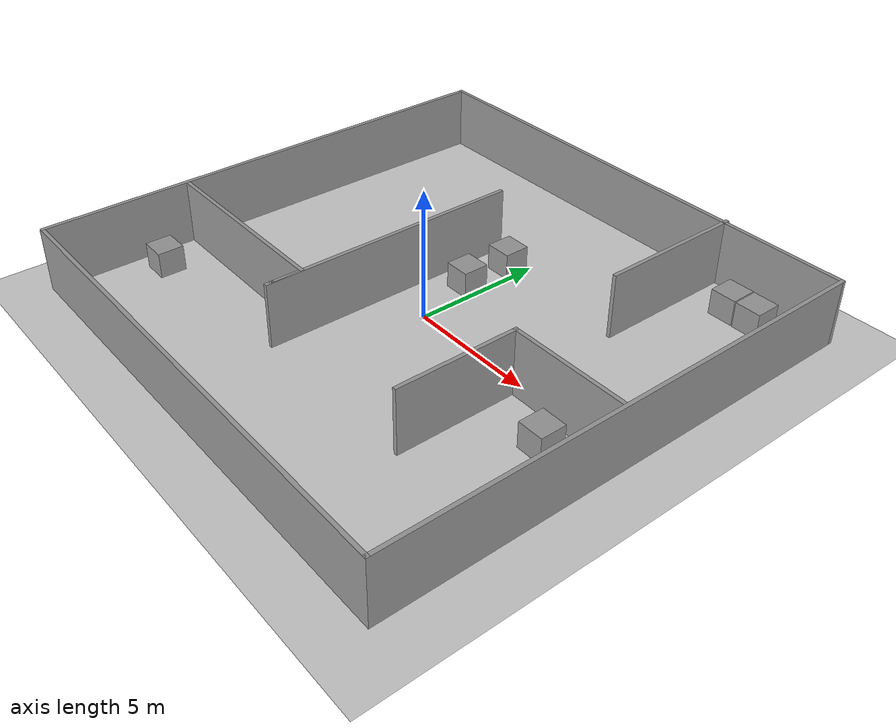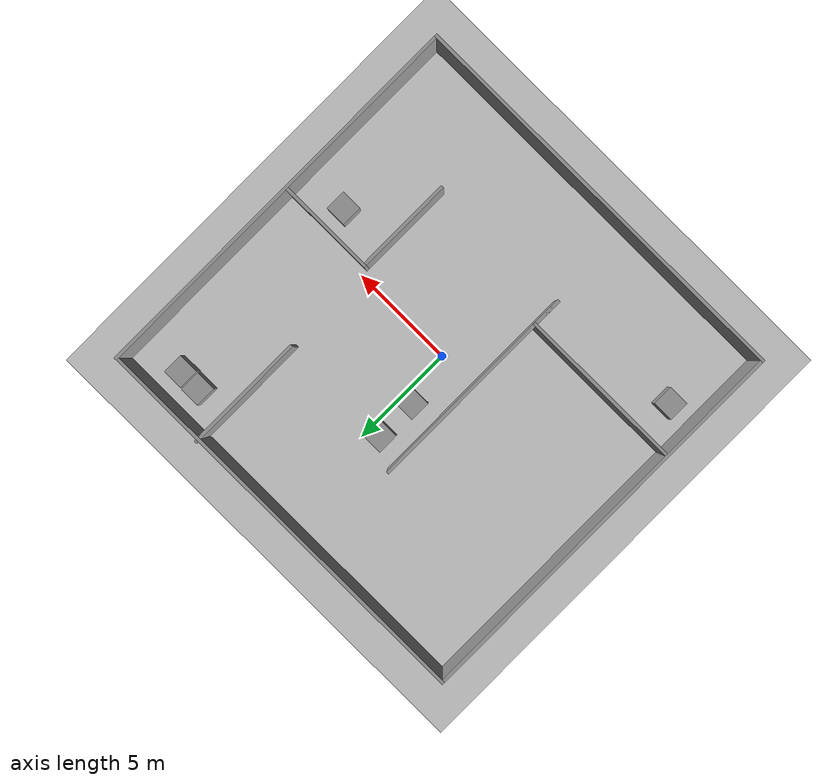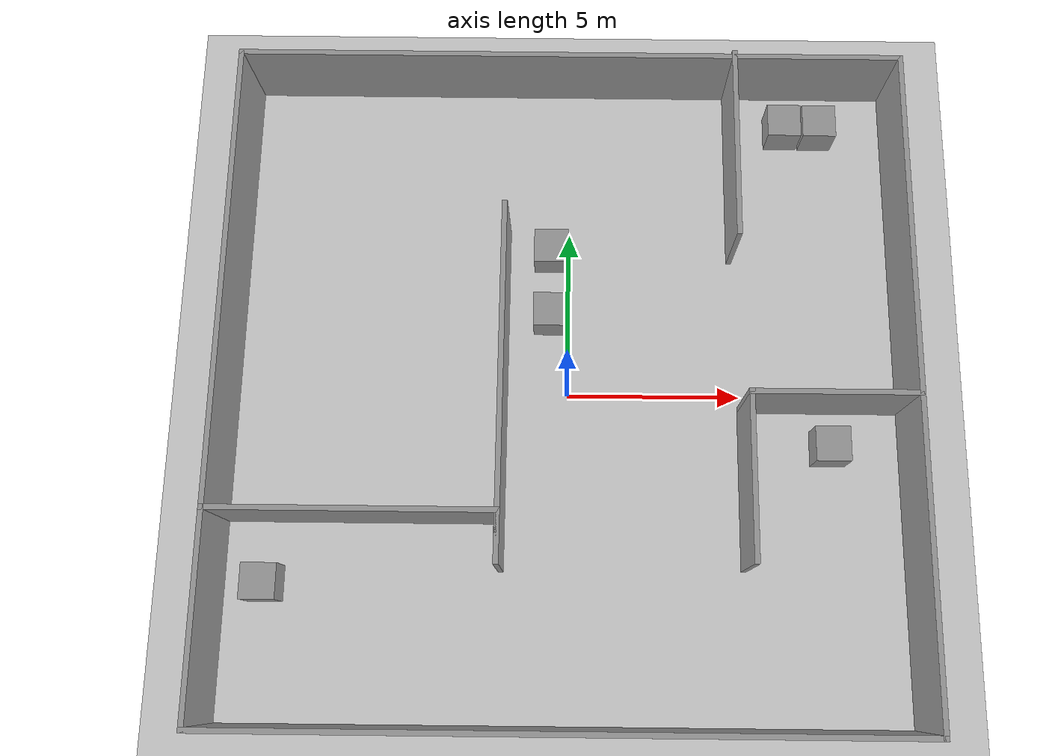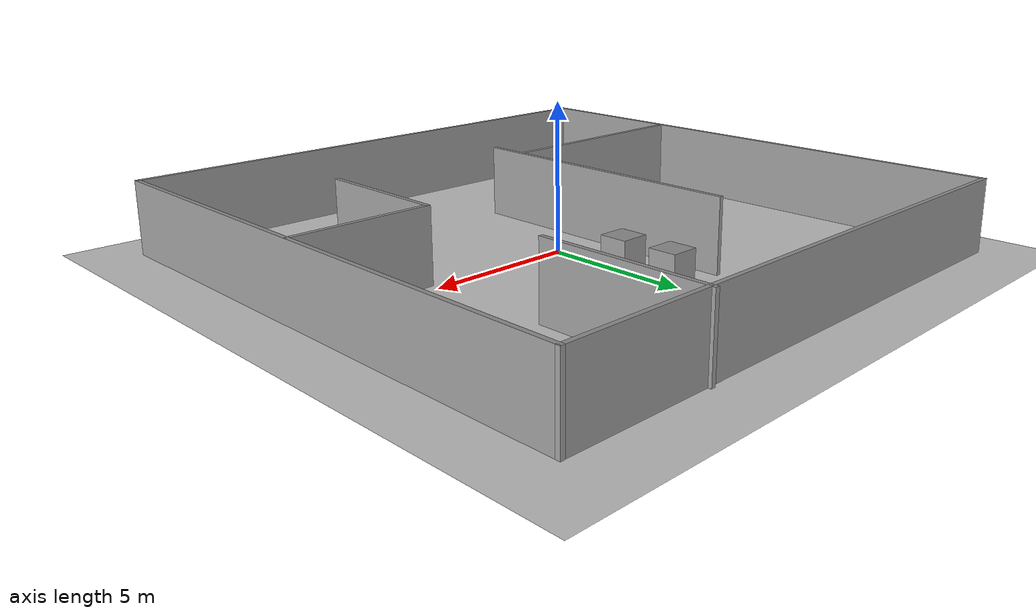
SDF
<sdf version="1.7">
 <world name="default">
  <light name="sun" type="directional">
   <pose>0 0 10 0 -0 0</pose>
   <diffuse>0.8 0.8 0.8 1</diffuse>
   <specular>0.2 0.2 0.2 1</specular>
   <attenuation>
    <range>1000</range>
    <constant>0.9</constant>
    <linear>0.01</linear>
    <quadratic>0.001</quadratic>
   </attenuation>
   <direction>-0.5 0.1 -0.9</direction>
   <spot><inner_angle>0</inner_angle><outer_angle>0</outer_angle><falloff>0</falloff></spot>
  </light>
  <model name="ground_plane">
   <static>1</static>
   <link name="link">
    <collision name="collision">
     <geometry><plane><normal>0 0 1</normal><size>100 100</size></plane></geometry>
     <surface>
      <contact><collide_bitmask>65535</collide_bitmask></contact>
      <friction><ode><mu>100</mu><mu2>50</mu2></ode></friction>
     </surface>
    </collision>
    <visual name="visual">
     <cast_shadows>0</cast_shadows>
     <geometry><plane><normal>0 0 1</normal><size>100 100</size></plane></geometry>
     <material>
      <script><uri>file://media/materials/scripts/gazebo.material</uri><name>Gazebo/Grey</name></script>
     </material>
    </visual>
   </link>
  </model>
  <gravity>0 0 -9.8</gravity>
  <magnetic_field>6e-06 2.3e-05 -4.2e-05</magnetic_field>
  <atmosphere type="adiabatic"/>
  <physics type="ode">
   <max_step_size>0.001</max_step_size>
   <real_time_factor>1</real_time_factor>
   <real_time_update_rate>1000</real_time_update_rate>
  </physics>
  <scene><ambient>0.4 0.4 0.4 1</ambient><background>0.7 0.7 0.7 1</background><shadows>1</shadows></scene>
  <audio><device>default</device></audio>
  <spherical_coordinates>
   <surface_model>EARTH_WGS84</surface_model>
   <latitude_deg>0</latitude_deg>
   <longitude_deg>0</longitude_deg>
   <elevation>0</elevation>
   <heading_deg>0</heading_deg>
  </spherical_coordinates>
  <model name="new_big_room">
   <pose>-0.01151 0.23336 0 0 -0 0</pose>
   <link name="Wall_25">
    <collision name="Wall_25_Collision">
     <geometry><box><size>19.5 0.15 2.5</size></box></geometry>
     <pose>0 0 1.25 0 -0 0</pose>
    </collision>
    <visual name="Wall_25_Visual">
     <pose>0 0 1.25 0 -0 0</pose>
     <geometry><box><size>19.5 0.15 2.5</size></box></geometry>
     <material>
      <script><uri>file://media/materials/scripts/gazebo.material</uri><name>Gazebo/Grey</name></script>
      <ambient>1 1 1 1</ambient>
     </material>
     <meta><layer>0</layer></meta>
    </visual>
    <pose>0 -9.6037 0 0 -0 0</pose>
   </link>
   <link name="Wall_29">
    <collision name="Wall_29_Collision">
     <geometry><box><size>19.25 0.15 2.5</size></box></geometry>
     <pose>0 0 1.25 0 -0 0</pose>
    </collision>
    <visual name="Wall_29_Visual">
     <pose>0 0 1.25 0 -0 0</pose>
     <geometry><box><size>19.25 0.15 2.5</size></box></geometry>
     <material>
      <script><uri>file://media/materials/scripts/gazebo.material</uri><name>Gazebo/Grey</name></script>
      <ambient>1 1 1 1</ambient>
     </material>
     <meta><layer>0</layer></meta>
    </visual>
    <pose>9.675 -0.053699 0 0 -0 1.5708</pose>
   </link>
   <link name="Wall_30">
    <collision name="Wall_30_Collision">
     <geometry><box><size>19.5 0.15 2.5</size></box></geometry>
     <pose>0 0 1.25 0 -0 0</pose>
    </collision>
    <visual name="Wall_30_Visual">
     <pose>0 0 1.25 0 -0 0</pose>
     <geometry><box><size>19.5 0.15 2.5</size></box></geometry>
     <material>
      <script><uri>file://media/materials/scripts/gazebo.material</uri><name>Gazebo/Grey</name></script>
      <ambient>1 1 1 1</ambient>
     </material>
     <meta><layer>0</layer></meta>
    </visual>
    <pose>0 9.4963 0 0 -0 3.14159</pose>
   </link>
   <link name="Wall_32">
    <collision name="Wall_32_Collision">
     <geometry><box><size>19.25 0.15 2.5</size></box></geometry>
     <pose>0 0 1.25 0 -0 0</pose>
    </collision>
    <visual name="Wall_32_Visual">
     <pose>0 0 1.25 0 -0 0</pose>
     <geometry><box><size>19.25 0.15 2.5</size></box></geometry>
     <material>
      <script><uri>file://media/materials/scripts/gazebo.material</uri><name>Gazebo/Grey</name></script>
      <ambient>1 1 1 1</ambient>
     </material>
     <meta><layer>0</layer></meta>
    </visual>
    <pose>-9.675 -0.053699 0 0 -0 1.5708</pose>
   </link>
   <link name="Wall_34">
    <collision name="Wall_34_Collision">
     <geometry><box><size>8 0.15 2.5</size></box></geometry>
     <pose>0 0 1.25 0 -0 0</pose>
    </collision>
    <visual name="Wall_34_Visual">
     <pose>0 0 1.25 0 -0 0</pose>
     <geometry><box><size>8 0.15 2.5</size></box></geometry>
     <material>
      <script><uri>file://media/materials/scripts/gazebo.material</uri><name>Gazebo/Grey</name></script>
      <ambient>1 1 1 1</ambient>
     </material>
     <meta><layer>0</layer></meta>
    </visual>
    <pose>-5.75 -3.93243 0 0 -0 0</pose>
   </link>
   <link name="Wall_35">
    <collision name="Wall_35_Collision">
     <geometry><box><size>1.5 0.15 2.5</size></box></geometry>
     <pose>0 0 1.25 0 -0 0</pose>
    </collision>
    <visual name="Wall_35_Visual">
     <pose>0 0 1.25 0 -0 0</pose>
     <geometry><box><size>1.5 0.15 2.5</size></box></geometry>
     <material>
      <script><uri>file://media/materials/scripts/gazebo.material</uri><name>Gazebo/Grey</name></script>
      <ambient>1 1 1 1</ambient>
     </material>
     <meta><layer>0</layer></meta>
    </visual>
    <pose>-1.825 -4.60743 0 0 -0 -1.5708</pose>
   </link>
   <link name="Wall_36">
    <collision name="Wall_36_Collision">
     <geometry><box><size>10.25 0.15 2.5</size></box></geometry>
     <pose>0 0 1.25 0 -0 0</pose>
    </collision>
    <visual name="Wall_36_Visual">
     <pose>0 0 1.25 0 -0 0</pose>
     <geometry><box><size>10.25 0.15 2.5</size></box></geometry>
     <material>
      <script><uri>file://media/materials/scripts/gazebo.material</uri><name>Gazebo/Grey</name></script>
      <ambient>1 1 1 1</ambient>
     </material>
     <meta><layer>0</layer></meta>
    </visual>
    <pose>-1.825 -0.232434 0 0 -0 1.5708</pose>
   </link>
   <link name="Wall_38">
    <collision name="Wall_38_Collision">
     <geometry><box><size>5.75 0.15 2.5</size></box></geometry>
     <pose>0 0 1.25 0 -0 0</pose>
    </collision>
    <visual name="Wall_38_Visual">
     <pose>0 0 1.25 0 -0 0</pose>
     <geometry><box><size>5.75 0.15 2.5</size></box></geometry>
     <material>
      <script><uri>file://media/materials/scripts/gazebo.material</uri><name>Gazebo/Grey</name></script>
      <ambient>1 1 1 1</ambient>
     </material>
     <meta><layer>0</layer></meta>
    </visual>
    <pose>4.82418 6.8037 0 0 -0 -1.5708</pose>
   </link>
   <link name="Wall_40">
    <collision name="Wall_40_Collision">
     <geometry><box><size>4.75 0.15 2.5</size></box></geometry>
     <pose>0 0 1.25 0 -0 0</pose>
    </collision>
    <visual name="Wall_40_Visual">
     <pose>0 0 1.25 0 -0 0</pose>
     <geometry><box><size>4.75 0.15 2.5</size></box></geometry>
     <material>
      <script><uri>file://media/materials/scripts/gazebo.material</uri><name>Gazebo/Grey</name></script>
      <ambient>1 1 1 1</ambient>
     </material>
     <meta><layer>0</layer></meta>
    </visual>
    <pose>7.3394 -0.615279 0 0 -0 3.14159</pose>
   </link>
   <link name="Wall_41">
    <collision name="Wall_41_Collision">
     <geometry><box><size>4.75 0.15 2.5</size></box></geometry>
     <pose>0 0 1.25 0 -0 0</pose>
    </collision>
    <visual name="Wall_41_Visual">
     <pose>0 0 1.25 0 -0 0</pose>
     <geometry><box><size>4.75 0.15 2.5</size></box></geometry>
     <material>
      <script><uri>file://media/materials/scripts/gazebo.material</uri><name>Gazebo/Grey</name></script>
      <ambient>1 1 1 1</ambient>
     </material>
     <meta><layer>0</layer></meta>
    </visual>
    <pose>5.0394 -2.91528 0 0 -0 -1.5708</pose>
   </link>
   <static>1</static>
  </model>
  <model name="unit_box">
   <pose>7.53819 8.44674 0.499995 -1e-05 0 0</pose>
   <link name="link">
    <inertial>
     <mass>1</mass>
     <inertia>
      <ixx>0.166667</ixx>
      <ixy>0</ixy>
      <ixz>0</ixz>
      <iyy>0.166667</iyy>
      <iyz>0</iyz>
      <izz>0.166667</izz>
     </inertia>
    </inertial>
    <collision name="collision"><geometry><box><size>1 1 1</size></box></geometry></collision>
    <visual name="visual">
     <geometry><box><size>1 1 1</size></box></geometry>
     <material>
      <script><name>Gazebo/Grey</name><uri>file://media/materials/scripts/gazebo.material</uri></script>
     </material>
    </visual>
   </link>
  </model>
  <model name="unit_box_0">
   <pose>6.48658 8.45762 0.499995 0 1e-05 0</pose>
   <link name="link">
    <inertial>
     <mass>1</mass>
     <inertia>
      <ixx>0.166667</ixx>
      <ixy>0</ixy>
      <ixz>0</ixz>
      <iyy>0.166667</iyy>
      <iyz>0</iyz>
      <izz>0.166667</izz>
     </inertia>
    </inertial>
    <collision name="collision"><geometry><box><size>1 1 1</size></box></geometry></collision>
    <visual name="visual">
     <geometry><box><size>1 1 1</size></box></geometry>
     <material>
      <script><name>Gazebo/Grey</name><uri>file://media/materials/scripts/gazebo.material</uri></script>
     </material>
    </visual>
   </link>
  </model>
  <model name="unit_box_1">
   <pose>7.52566 -1.51398 0.499995 0 1e-05 0</pose>
   <link name="link">
    <inertial>
     <mass>1</mass>
     <inertia>
      <ixx>0.166667</ixx>
      <ixy>0</ixy>
      <ixz>0</ixz>
      <iyy>0.166667</iyy>
      <iyz>0</iyz>
      <izz>0.166667</izz>
     </inertia>
    </inertial>
    <collision name="collision"><geometry><box><size>1 1 1</size></box></geometry></collision>
    <visual name="visual">
     <geometry><box><size>1 1 1</size></box></geometry>
     <material>
      <script><name>Gazebo/Grey</name><uri>file://media/materials/scripts/gazebo.material</uri></script>
     </material>
    </visual>
   </link>
  </model>
  <model name="unit_box_2">
   <pose>-8.44041 -5.51018 0.499995 -1e-05 -0 -0</pose>
   <link name="link">
    <inertial>
     <mass>1</mass>
     <inertia>
      <ixx>0.166667</ixx>
      <ixy>0</ixy>
      <ixz>0</ixz>
      <iyy>0.166667</iyy>
      <iyz>0</iyz>
      <izz>0.166667</izz>
     </inertia>
    </inertial>
    <collision name="collision"><geometry><box><size>1 1 1</size></box></geometry></collision>
    <visual name="visual">
     <geometry><box><size>1 1 1</size></box></geometry>
     <material>
      <script><name>Gazebo/Grey</name><uri>file://media/materials/scripts/gazebo.material</uri></script>
     </material>
    </visual>
   </link>
  </model>
  <model name="unit_box_3">
   <pose>-0.524859 4.34581 0.499995 -1e-05 -0 0</pose>
   <link name="link">
    <inertial>
     <mass>1</mass>
     <inertia>
      <ixx>0.166667</ixx>
      <ixy>0</ixy>
      <ixz>0</ixz>
      <iyy>0.166667</iyy>
      <iyz>0</iyz>
      <izz>0.166667</izz>
     </inertia>
    </inertial>
    <collision name="collision"><geometry><box><size>1 1 1</size></box></geometry></collision>
    <visual name="visual">
     <geometry><box><size>1 1 1</size></box></geometry>
     <material>
      <script><name>Gazebo/Grey</name><uri>file://media/materials/scripts/gazebo.material</uri></script>
     </material>
    </visual>
   </link>
  </model>
  <model name="unit_box_4">
   <pose>-0.517649 2.3796 0.5 0 -0 0</pose>
   <link name="link">
    <inertial>
     <mass>1</mass>
     <inertia>
      <ixx>0.166667</ixx>
      <ixy>0</ixy>
      <ixz>0</ixz>
      <iyy>0.166667</iyy>
      <iyz>0</iyz>
      <izz>0.166667</izz>
     </inertia>
    </inertial>
    <collision name="collision"><geometry><box><size>1 1 1</size></box></geometry></collision>
    <visual name="visual">
     <geometry><box><size>1 1 1</size></box></geometry>
     <material>
      <script><name>Gazebo/Grey</name><uri>file://media/materials/scripts/gazebo.material</uri></script>
     </material>
    </visual>
   </link>
  </model>
 </world>
</sdf>
